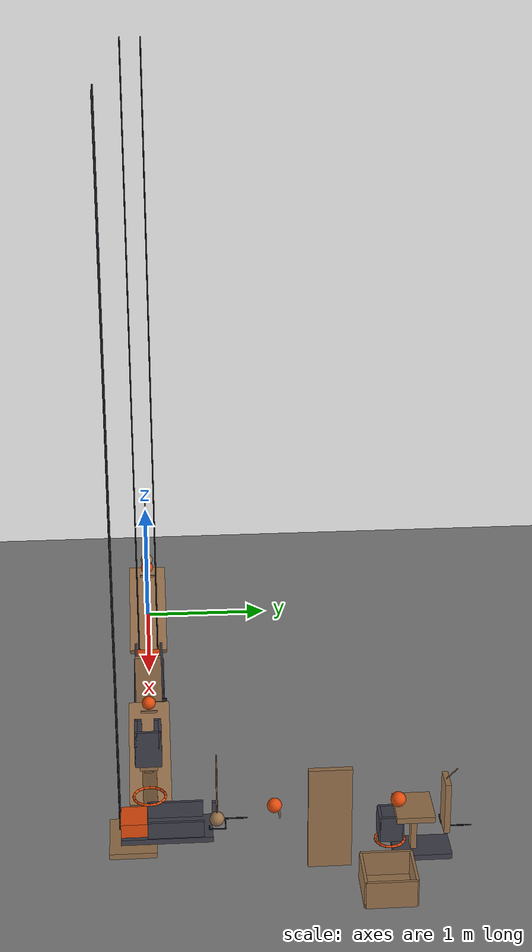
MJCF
<mujoco model="revised_four_ball_cascade">
  <compiler angle="radian"/>
  <option timestep="0.002"/>
  <worldbody>
    <geom name="floor" type="plane" size="12 12 0.1" friction="0.68 0.005 0.002"/>
    <body name="pendulum1" pos="-0.0299343 0 1.06529">
      <joint name="pendulum1_hinge" type="hinge" pos="0 0 0" axis="0 1 0" limited="true" range="-1.309 0.959931" damping="0.04"/>
      <geom name="pendulum1" type="sphere" pos="0 0 -0.55" size="0.05" mass="0.36" friction="0.68 0.005 0.0001" solref="0.01 1" rgba="0.6 0.45 0.3 1"/>
      <geom name="pendulum1 rod" type="capsule" size="0.005" fromto="0 0 0 3.46945e-18 0 -0.5" mass="0.04" friction="0.68 0.005 0.0001" solref="0.01 1" rgba="0.6 0.45 0.3 1"/>
    </body>
    <body name="ramp1">
      <geom name="ramp1" type="box" pos="0.449121 0 0.285735" size="0.475 0.15 0.02" euler="0 0.331613 0" friction="0.68 0.005 0.0001" solref="0.01 1" rgba="0.6 0.45 0.3 1"/>
    </body>
    <body name="ramp1 holding lip">
      <geom name="ramp1 holding lip" type="box" pos="0.113 0 0.4306" size="0.006 0.06 0.008" friction="0.68 0.005 0.0001" solref="0.01 1" rgba="0.6 0.45 0.3 1"/>
    </body>
    <body name="ball1" pos="0.0700657 0 0.490287">
      <freejoint/>
      <geom name="ball1" type="sphere" pos="0 0 0" size="0.05" mass="0.2" condim="6" friction="0.68 0.005 0.002" solref="0.01 1" rgba="0.9 0.3 0.05 1"/>
    </body>
    <body name="cart1 track">
      <geom name="cart1 track" type="box" pos="1.36975 0 0.1" size="0.375 0.12 0.02" friction="0.68 0.005 0.0001" solref="0.01 1" rgba="0.25 0.25 0.3 1"/>
    </body>
    <body name="cart1 left guide">
      <geom name="cart1 left guide" type="box" pos="1.36975 0.102 0.185" size="0.4 0.01 0.065" friction="0.68 0.005 0.0001" solref="0.01 1" rgba="0.25 0.25 0.3 1"/>
    </body>
    <body name="cart1 right guide">
      <geom name="cart1 right guide" type="box" pos="1.36975 -0.102 0.185" size="0.4 0.01 0.065" friction="0.68 0.005 0.0001" solref="0.01 1" rgba="0.25 0.25 0.3 1"/>
    </body>
    <body name="cart1" pos="1.13475 0 0.17">
      <freejoint/>
      <geom name="cart1" type="box" pos="0 0 0" size="0.11 0.09 0.05" mass="0.5" friction="0.68 0.005 0.0001" solref="0.01 1" rgba="0.9 0.3 0.05 1"/>
    </body>
    <body name="cart1 assist" pos="1.01975 0 5.17">
      <joint name="cart1_assist_hinge" type="hinge" pos="0 0 0" axis="0 1 0" limited="true" range="-0.139626 0" stiffness="0.1" springref="-166" damping="0.04"/>
      <geom name="cart1 assist" type="capsule" size="0.005" fromto="0 -0.075 0 0 -0.075 -5" mass="0.005" friction="0.68 0.005 0.0001" solref="0.01 1" rgba="0.2 0.2 0.25 1"/>
      <geom name="cart1 assist left arm" type="capsule" size="0.005" fromto="0 0.075 0 0 0.075 -5" mass="0.005" friction="0.68 0.005 0.0001" solref="0.01 1" rgba="0.2 0.2 0.25 1"/>
    </body>
    <body name="cart1 left stop">
      <geom name="cart1 left stop" type="box" pos="1.70475 0.095 0.18" size="0.02 0.02 0.06" friction="0.68 0.005 0.0001" solref="0.01 1" rgba="0.25 0.25 0.3 1"/>
    </body>
    <body name="cart1 right stop">
      <geom name="cart1 right stop" type="box" pos="1.70475 -0.095 0.18" size="0.02 0.02 0.06" friction="0.68 0.005 0.0001" solref="0.01 1" rgba="0.25 0.25 0.3 1"/>
    </body>
    <body name="domino1" pos="1.68475 0 0.24">
      <freejoint/>
      <geom name="domino1" type="box" pos="0 0 0" size="0.04 0.02 0.12" mass="0.25" friction="0.68 0.005 0.0001" solref="0.01 1" rgba="0.6 0.45 0.3 1"/>
    </body>
    <body name="flap1" pos="1.92475 0 0.65">
      <joint name="flap1_hinge" type="hinge" pos="0 0 0" axis="0 1 0" limited="true" range="-1.13446 0" stiffness="0.5" springref="-1.13446" damping="0.04"/>
      <geom name="flap1" type="box" pos="0 0 -0.2" size="0.2 0.1 0.02" euler="0 -1.5708 0" mass="0.3" friction="0.68 0.005 0.0001" solref="0.01 1" rgba="0.6 0.45 0.3 1"/>
    </body>
    <body name="flap1 catch" pos="2.09975 -0.015 0.27">
      <joint name="flap1_catch_hinge" type="hinge" pos="0 0 0" axis="0 0 1" limited="true" range="-1.74533 0" damping="0.04"/>
      <geom name="flap1 catch" type="capsule" size="0.005" fromto="-0.15 0 0 0 0 0" mass="0.004" friction="0.68 0.005 0.0001" solref="0.01 1" rgba="0.2 0.2 0.25 1"/>
      <geom name="flap1 catch crosspiece" type="capsule" size="0.004" fromto="-0.15 0 0 -0.15 0.145 0" mass="0.002" friction="0.68 0.005 0.0001" solref="0.01 1" rgba="0.2 0.2 0.25 1"/>
      <geom name="flap1 catch return" type="capsule" size="0.004" fromto="-0.15 0.145 0 -0.2 0.145 0" mass="0.002" friction="0.68 0.005 0.0001" solref="0.01 1" rgba="0.2 0.2 0.25 1"/>
      <geom name="flap1 release ear" type="capsule" size="0.004" fromto="-0.2 0.145 0 -0.2 0.03 0" mass="0.002" friction="0.68 0.005 0.0001" solref="0.01 1" rgba="0.2 0.2 0.25 1"/>
    </body>
    <body name="ramp2">
      <geom name="ramp2" type="box" pos="2.71512 0 0.285735" size="0.475 0.15 0.02" euler="0 0.331613 0" friction="0.68 0.005 0.0001" solref="0.01 1" rgba="0.6 0.45 0.3 1"/>
    </body>
    <body name="ramp2 holding lip">
      <geom name="ramp2 holding lip" type="box" pos="2.369 0 0.434043" size="0.006 0.06 0.008" friction="0.68 0.005 0.0001" solref="0.01 1" rgba="0.6 0.45 0.3 1"/>
    </body>
    <body name="ball2" pos="2.33607 0 0.490287">
      <freejoint/>
      <geom name="ball2" type="sphere" pos="0 0 0" size="0.05" mass="0.2" condim="6" friction="0.68 0.005 0.002" solref="0.01 1" rgba="0.9 0.3 0.05 1"/>
    </body>
    <body name="seesaw1" pos="3.37419 0 0.513926">
      <joint name="seesaw1_hinge" type="hinge" pos="0 0 0" axis="0 1 0" limited="true" range="-0.698132 0" stiffness="0.1" springref="-13" damping="0.04"/>
      <geom name="seesaw1" type="box" pos="-5e-08 0 0" size="0.325 0.05 0.02" euler="0 -1.309 0" mass="0.55" friction="0.68 0.005 0.0001" solref="0.01 1" rgba="0.6 0.45 0.3 1"/>
      <geom name="seesaw1 cradle bridge" type="box" pos="0.234116 0 0.321074" size="0.15 0.02 0.005" mass="0.003" friction="0.68 0.005 0.0001" solref="0.01 1" rgba="0.6 0.45 0.3 1"/>
      <geom name="seesaw1 cradle" type="box" pos="0.384116 0 0.321074" size="0.07 0.03 0.005" mass="0.003" friction="0.68 0.005 0.0001" solref="0.01 1" rgba="0.6 0.45 0.3 1"/>
    </body>
    <body name="block1" pos="3.7583 0 0.9">
      <freejoint/>
      <geom name="block1" type="box" pos="0 0 0" size="0.06 0.06 0.06" mass="0.35" friction="0.68 0.005 0.0001" solref="0.01 1" rgba="0.6 0.45 0.3 1"/>
    </body>
    <body name="block1 near left guide">
      <geom name="block1 near left guide" type="box" pos="3.6783 0.06 1.0175" size="0.01 0.02 0.1325" friction="0.68 0.005 0.0001" solref="0.01 1" rgba="0.25 0.25 0.3 1"/>
    </body>
    <body name="block1 near right guide">
      <geom name="block1 near right guide" type="box" pos="3.6783 -0.06 1.0175" size="0.01 0.02 0.1325" friction="0.68 0.005 0.0001" solref="0.01 1" rgba="0.25 0.25 0.3 1"/>
    </body>
    <body name="block1 far guide">
      <geom name="block1 far guide" type="box" pos="3.8383 0 1.0175" size="0.01 0.09 0.1325" friction="0.68 0.005 0.0001" solref="0.01 1" rgba="0.25 0.25 0.3 1"/>
    </body>
    <body name="block1 left guide">
      <geom name="block1 left guide" type="box" pos="3.7583 0.08 1.0175" size="0.09 0.01 0.1325" friction="0.68 0.005 0.0001" solref="0.01 1" rgba="0.25 0.25 0.3 1"/>
    </body>
    <body name="block1 right guide">
      <geom name="block1 right guide" type="box" pos="3.7583 -0.08 1.0175" size="0.09 0.01 0.1325" friction="0.68 0.005 0.0001" solref="0.01 1" rgba="0.25 0.25 0.3 1"/>
    </body>
    <body name="ring1">
      <geom name="ring1_00" type="capsule" size="0.008" fromto="3.8663 0 0.6 3.85808 0.0413298 0.6" friction="0.68 0.005 0.0001" solref="0.01 1" rgba="0.9 0.3 0.05 1"/>
      <geom name="ring1_01" type="capsule" size="0.008" fromto="3.85808 0.0413298 0.6 3.83467 0.0763675 0.6" friction="0.68 0.005 0.0001" solref="0.01 1" rgba="0.9 0.3 0.05 1"/>
      <geom name="ring1_02" type="capsule" size="0.008" fromto="3.83467 0.0763675 0.6 3.79963 0.099779 0.6" friction="0.68 0.005 0.0001" solref="0.01 1" rgba="0.9 0.3 0.05 1"/>
      <geom name="ring1_03" type="capsule" size="0.008" fromto="3.79963 0.099779 0.6 3.7583 0.108 0.6" friction="0.68 0.005 0.0001" solref="0.01 1" rgba="0.9 0.3 0.05 1"/>
      <geom name="ring1_04" type="capsule" size="0.008" fromto="3.7583 0.108 0.6 3.71697 0.099779 0.6" friction="0.68 0.005 0.0001" solref="0.01 1" rgba="0.9 0.3 0.05 1"/>
      <geom name="ring1_05" type="capsule" size="0.008" fromto="3.71697 0.099779 0.6 3.68194 0.0763675 0.6" friction="0.68 0.005 0.0001" solref="0.01 1" rgba="0.9 0.3 0.05 1"/>
      <geom name="ring1_06" type="capsule" size="0.008" fromto="3.68194 0.0763675 0.6 3.65853 0.0413298 0.6" friction="0.68 0.005 0.0001" solref="0.01 1" rgba="0.9 0.3 0.05 1"/>
      <geom name="ring1_07" type="capsule" size="0.008" fromto="3.65853 0.0413298 0.6 3.6503 1.32262e-17 0.6" friction="0.68 0.005 0.0001" solref="0.01 1" rgba="0.9 0.3 0.05 1"/>
      <geom name="ring1_08" type="capsule" size="0.008" fromto="3.6503 1.32262e-17 0.6 3.65853 -0.0413298 0.6" friction="0.68 0.005 0.0001" solref="0.01 1" rgba="0.9 0.3 0.05 1"/>
      <geom name="ring1_09" type="capsule" size="0.008" fromto="3.65853 -0.0413298 0.6 3.68194 -0.0763675 0.6" friction="0.68 0.005 0.0001" solref="0.01 1" rgba="0.9 0.3 0.05 1"/>
      <geom name="ring1_10" type="capsule" size="0.008" fromto="3.68194 -0.0763675 0.6 3.71697 -0.099779 0.6" friction="0.68 0.005 0.0001" solref="0.01 1" rgba="0.9 0.3 0.05 1"/>
      <geom name="ring1_11" type="capsule" size="0.008" fromto="3.71697 -0.099779 0.6 3.7583 -0.108 0.6" friction="0.68 0.005 0.0001" solref="0.01 1" rgba="0.9 0.3 0.05 1"/>
      <geom name="ring1_12" type="capsule" size="0.008" fromto="3.7583 -0.108 0.6 3.79963 -0.099779 0.6" friction="0.68 0.005 0.0001" solref="0.01 1" rgba="0.9 0.3 0.05 1"/>
      <geom name="ring1_13" type="capsule" size="0.008" fromto="3.79963 -0.099779 0.6 3.83467 -0.0763675 0.6" friction="0.68 0.005 0.0001" solref="0.01 1" rgba="0.9 0.3 0.05 1"/>
      <geom name="ring1_14" type="capsule" size="0.008" fromto="3.83467 -0.0763675 0.6 3.85808 -0.0413298 0.6" friction="0.68 0.005 0.0001" solref="0.01 1" rgba="0.9 0.3 0.05 1"/>
      <geom name="ring1_15" type="capsule" size="0.008" fromto="3.85808 -0.0413298 0.6 3.8663 -2.64524e-17 0.6" friction="0.68 0.005 0.0001" solref="0.01 1" rgba="0.9 0.3 0.05 1"/>
    </body>
    <body name="door1" pos="3.7583 -0.12 0.27">
      <joint name="door1_hinge" type="hinge" pos="0 0 0" axis="1 0 0" limited="true" range="-1.22173 0" damping="0.04"/>
      <geom name="door1" type="box" pos="0 0 0" size="0.21 0.16 0.02" mass="0.45" friction="0.68 0.005 0.0001" solref="0.01 1" rgba="0.6 0.45 0.3 1"/>
    </body>
    <body name="cart2 track">
      <geom name="cart2 track" type="box" pos="3.7583 0.11 0.33" size="0.14 0.31 0.02" friction="0.68 0.005 0.0001" solref="0.01 1" rgba="0.25 0.25 0.3 1"/>
    </body>
    <body name="cart2 near guide">
      <geom name="cart2 near guide" type="box" pos="3.6363 0.17 0.41" size="0.01 0.19 0.06" friction="0.68 0.005 0.0001" solref="0.01 1" rgba="0.25 0.25 0.3 1"/>
    </body>
    <body name="cart2 far guide">
      <geom name="cart2 far guide" type="box" pos="3.8803 0.17 0.41" size="0.01 0.19 0.06" friction="0.68 0.005 0.0001" solref="0.01 1" rgba="0.25 0.25 0.3 1"/>
    </body>
    <body name="cart2" pos="3.7583 -0.11 0.4">
      <freejoint/>
      <geom name="cart2" type="box" pos="0 0 0" size="0.11 0.09 0.05" mass="0.5" friction="0.68 0.005 0.0001" solref="0.01 1" rgba="0.9 0.3 0.05 1"/>
    </body>
    <body name="cart2 assist" pos="3.7583 -0.205 5.4">
      <joint name="cart2_assist_hinge" type="hinge" pos="0 0 0" axis="1 0 0" limited="true" range="0 0.139626" stiffness="0.1" springref="166" damping="0.04"/>
      <geom name="cart2 assist" type="capsule" size="0.005" fromto="-0.075 0 0 -0.075 0 -5" mass="0.005" friction="0.68 0.005 0.0001" solref="0.01 1" rgba="0.2 0.2 0.25 1"/>
      <geom name="cart2 assist far arm" type="capsule" size="0.005" fromto="0.075 0 0 0.075 0 -5" mass="0.005" friction="0.68 0.005 0.0001" solref="0.01 1" rgba="0.2 0.2 0.25 1"/>
    </body>
    <body name="cart2 stop">
      <geom name="cart2 stop" type="box" pos="3.6533 0.44 0.41" size="0.015 0.02 0.06" friction="0.68 0.005 0.0001" solref="0.01 1" rgba="0.25 0.25 0.3 1"/>
    </body>
    <body name="pendulum2" pos="3.7583 0.45 0.9">
      <joint name="pendulum2_hinge" type="hinge" pos="0 0 0" axis="1 0 0" limited="true" range="0 0.663225" stiffness="3" springref="0.663225" damping="0.04"/>
      <geom name="pendulum2" type="sphere" pos="0 0 -0.5" size="0.05" mass="0.32" friction="0.68 0.005 0.0001" solref="0.01 1" rgba="0.6 0.45 0.3 1"/>
      <geom name="pendulum2 rod" type="capsule" size="0.005" fromto="0 0 0 0 0 -0.45" mass="0.03" friction="0.68 0.005 0.0001" solref="0.01 1" rgba="0.6 0.45 0.3 1"/>
    </body>
    <body name="pendulum2 catch" pos="3.7583 0.655 0.4">
      <joint name="pendulum2_catch_hinge" type="hinge" pos="0 0 0" axis="0 0 1" limited="true" range="0 1.74533" damping="0.04"/>
      <geom name="pendulum2 catch" type="capsule" size="0.005" fromto="0 -0.15 0 0 0 0" mass="0.004" friction="0.68 0.005 0.0001" solref="0.01 1" rgba="0.2 0.2 0.25 1"/>
      <geom name="pendulum2 catch crosspiece" type="capsule" size="0.004" fromto="0 -0.15 0 0.12 -0.15 0" mass="0.002" friction="0.68 0.005 0.0001" solref="0.01 1" rgba="0.2 0.2 0.25 1"/>
      <geom name="pendulum2 catch return" type="capsule" size="0.004" fromto="0.12 -0.15 0 0.12 -0.26 0" mass="0.002" friction="0.68 0.005 0.0001" solref="0.01 1" rgba="0.2 0.2 0.25 1"/>
      <geom name="pendulum2 release ear" type="capsule" size="0.004" fromto="0.12 -0.26 0 0.08 -0.26 0" mass="0.002" friction="0.68 0.005 0.0001" solref="0.01 1" rgba="0.2 0.2 0.25 1"/>
    </body>
    <body name="ramp3">
      <geom name="ramp3" type="box" pos="3.7583 1.22065 0.285735" size="0.475 0.15 0.02" euler="0 1.5708 0" friction="0.68 0.005 0.0001" solref="0.01 1" rgba="0.6 0.45 0.3 1"/>
    </body>
    <body name="ramp3 holding lip">
      <geom name="ramp3 holding lip" type="box" pos="3.7583 0.874526 0.434043" size="0.06 0.006 0.008" friction="0.68 0.005 0.0001" solref="0.01 1" rgba="0.6 0.45 0.3 1"/>
    </body>
    <body name="ball3" pos="3.7583 0.841592 0.490287">
      <freejoint/>
      <geom name="ball3" type="sphere" pos="0 0 0" size="0.05" mass="0.2" condim="6" friction="0.68 0.005 0.002" solref="0.01 1" rgba="0.9 0.3 0.05 1"/>
    </body>
    <body name="domino2 platform">
      <geom name="domino2 platform" type="box" pos="3.7583 1.855 0.1" size="0.12 0.2 0.02" friction="0.68 0.005 0.0001" solref="0.01 1" rgba="0.25 0.25 0.3 1"/>
    </body>
    <body name="domino2" pos="3.7583 1.79628 0.24">
      <freejoint/>
      <geom name="domino2" type="box" pos="0 0 0" size="0.04 0.02 0.12" mass="0.25" friction="0.68 0.005 0.0001" solref="0.01 1" rgba="0.6 0.45 0.3 1"/>
    </body>
    <body name="flap2" pos="3.7583 2.01628 0.65">
      <joint name="flap2_hinge" type="hinge" pos="0 0 0" axis="1 0 0" limited="true" range="0 1.0472" stiffness="0.5" springref="1.0472" damping="0.04"/>
      <geom name="flap2" type="box" pos="0 0 -0.19" size="0.09 0.02 0.19" mass="0.28" friction="0.68 0.005 0.0001" solref="0.01 1" rgba="0.6 0.45 0.3 1"/>
      <geom name="flap2 striker" type="capsule" size="0.004" fromto="0 0 0 0.5 -0.0191154 0.393109" mass="0.005" friction="0.68 0.005 0.0001" solref="0.01 1" rgba="0.6 0.45 0.3 1"/>
    </body>
    <body name="flap2 catch" pos="3.7733 2.19128 0.28">
      <joint name="flap2_catch_hinge" type="hinge" pos="0 0 0" axis="0 0 1" limited="true" range="-1.74533 0" damping="0.04"/>
      <geom name="flap2 catch" type="capsule" size="0.005" fromto="0 -0.15 0 0 0 0" mass="0.004" friction="0.68 0.005 0.0001" solref="0.01 1" rgba="0.2 0.2 0.25 1"/>
      <geom name="flap2 catch crosspiece" type="capsule" size="0.004" fromto="0 -0.15 0 -0.135 -0.15 0" mass="0.002" friction="0.68 0.005 0.0001" solref="0.01 1" rgba="0.2 0.2 0.25 1"/>
      <geom name="flap2 catch return" type="capsule" size="0.004" fromto="-0.135 -0.15 0 -0.135 -0.2 0" mass="0.002" friction="0.68 0.005 0.0001" solref="0.01 1" rgba="0.2 0.2 0.25 1"/>
      <geom name="flap2 release ear" type="capsule" size="0.004" fromto="-0.135 -0.2 0 -0.03 -0.2 0" mass="0.002" friction="0.68 0.005 0.0001" solref="0.01 1" rgba="0.2 0.2 0.25 1"/>
    </body>
    <body name="shelf1">
      <geom name="shelf1" type="box" pos="4.2583 1.71628 0.76" size="0.15 0.125 0.02" friction="0.68 0.005 0.0001" solref="0.01 1" rgba="0.6 0.45 0.3 1"/>
    </body>
    <body name="ball4" pos="4.2583 1.61628 0.83">
      <freejoint/>
      <geom name="ball4" type="sphere" pos="0 0 0" size="0.05" mass="0.2" condim="6" friction="0.68 0.005 0.002" solref="0.01 1" rgba="0.9 0.3 0.05 1"/>
    </body>
    <body name="ball4 near drop guide">
      <geom name="ball4 near drop guide" type="box" pos="4.1863 1.56628 0.65" size="0.01 0.072 0.09" friction="0.68 0.005 0.0001" solref="0.01 1" rgba="0.25 0.25 0.3 1"/>
    </body>
    <body name="ball4 far drop guide">
      <geom name="ball4 far drop guide" type="box" pos="4.3303 1.56628 0.65" size="0.01 0.072 0.09" friction="0.68 0.005 0.0001" solref="0.01 1" rgba="0.25 0.25 0.3 1"/>
    </body>
    <body name="ball4 left drop guide">
      <geom name="ball4 left drop guide" type="box" pos="4.2583 1.63828 0.65" size="0.072 0.01 0.09" friction="0.68 0.005 0.0001" solref="0.01 1" rgba="0.25 0.25 0.3 1"/>
    </body>
    <body name="ball4 right drop guide">
      <geom name="ball4 right drop guide" type="box" pos="4.2583 1.49428 0.65" size="0.072 0.01 0.09" friction="0.68 0.005 0.0001" solref="0.01 1" rgba="0.25 0.25 0.3 1"/>
    </body>
    <body name="ring2">
      <geom name="ring2_00" type="capsule" size="0.008" fromto="4.3543 1.56628 0.53 4.347 1.60302 0.53" friction="0.68 0.005 0.0001" solref="0.01 1" rgba="0.9 0.3 0.05 1"/>
      <geom name="ring2_01" type="capsule" size="0.008" fromto="4.347 1.60302 0.53 4.32619 1.63416 0.53" friction="0.68 0.005 0.0001" solref="0.01 1" rgba="0.9 0.3 0.05 1"/>
      <geom name="ring2_02" type="capsule" size="0.008" fromto="4.32619 1.63416 0.53 4.29504 1.65497 0.53" friction="0.68 0.005 0.0001" solref="0.01 1" rgba="0.9 0.3 0.05 1"/>
      <geom name="ring2_03" type="capsule" size="0.008" fromto="4.29504 1.65497 0.53 4.2583 1.66228 0.53" friction="0.68 0.005 0.0001" solref="0.01 1" rgba="0.9 0.3 0.05 1"/>
      <geom name="ring2_04" type="capsule" size="0.008" fromto="4.2583 1.66228 0.53 4.22157 1.65497 0.53" friction="0.68 0.005 0.0001" solref="0.01 1" rgba="0.9 0.3 0.05 1"/>
      <geom name="ring2_05" type="capsule" size="0.008" fromto="4.22157 1.65497 0.53 4.19042 1.63416 0.53" friction="0.68 0.005 0.0001" solref="0.01 1" rgba="0.9 0.3 0.05 1"/>
      <geom name="ring2_06" type="capsule" size="0.008" fromto="4.19042 1.63416 0.53 4.16961 1.60302 0.53" friction="0.68 0.005 0.0001" solref="0.01 1" rgba="0.9 0.3 0.05 1"/>
      <geom name="ring2_07" type="capsule" size="0.008" fromto="4.16961 1.60302 0.53 4.1623 1.56628 0.53" friction="0.68 0.005 0.0001" solref="0.01 1" rgba="0.9 0.3 0.05 1"/>
      <geom name="ring2_08" type="capsule" size="0.008" fromto="4.1623 1.56628 0.53 4.16961 1.52954 0.53" friction="0.68 0.005 0.0001" solref="0.01 1" rgba="0.9 0.3 0.05 1"/>
      <geom name="ring2_09" type="capsule" size="0.008" fromto="4.16961 1.52954 0.53 4.19042 1.4984 0.53" friction="0.68 0.005 0.0001" solref="0.01 1" rgba="0.9 0.3 0.05 1"/>
      <geom name="ring2_10" type="capsule" size="0.008" fromto="4.19042 1.4984 0.53 4.22157 1.47759 0.53" friction="0.68 0.005 0.0001" solref="0.01 1" rgba="0.9 0.3 0.05 1"/>
      <geom name="ring2_11" type="capsule" size="0.008" fromto="4.22157 1.47759 0.53 4.2583 1.47028 0.53" friction="0.68 0.005 0.0001" solref="0.01 1" rgba="0.9 0.3 0.05 1"/>
      <geom name="ring2_12" type="capsule" size="0.008" fromto="4.2583 1.47028 0.53 4.29504 1.47759 0.53" friction="0.68 0.005 0.0001" solref="0.01 1" rgba="0.9 0.3 0.05 1"/>
      <geom name="ring2_13" type="capsule" size="0.008" fromto="4.29504 1.47759 0.53 4.32619 1.4984 0.53" friction="0.68 0.005 0.0001" solref="0.01 1" rgba="0.9 0.3 0.05 1"/>
      <geom name="ring2_14" type="capsule" size="0.008" fromto="4.32619 1.4984 0.53 4.347 1.52954 0.53" friction="0.68 0.005 0.0001" solref="0.01 1" rgba="0.9 0.3 0.05 1"/>
      <geom name="ring2_15" type="capsule" size="0.008" fromto="4.347 1.52954 0.53 4.3543 1.56628 0.53" friction="0.68 0.005 0.0001" solref="0.01 1" rgba="0.9 0.3 0.05 1"/>
    </body>
    <body name="box1">
      <geom name="box1_base" type="box" pos="4.2583 1.56628 0.12" size="0.17 0.17 0.01" friction="0.68 0.005 0.002" solref="0.01 1" rgba="0.6 0.45 0.3 1"/>
      <geom name="box1_near_wall" type="box" pos="4.0883 1.56628 0.21" size="0.01 0.17 0.1" friction="0.68 0.005 0.002" solref="0.01 1" rgba="0.6 0.45 0.3 1"/>
      <geom name="box1_far_wall" type="box" pos="4.4283 1.56628 0.21" size="0.01 0.17 0.1" friction="0.68 0.005 0.002" solref="0.01 1" rgba="0.6 0.45 0.3 1"/>
      <geom name="box1_left_wall" type="box" pos="4.2583 1.73628 0.21" size="0.17 0.01 0.1" friction="0.68 0.005 0.002" solref="0.01 1" rgba="0.6 0.45 0.3 1"/>
      <geom name="box1_right_wall" type="box" pos="4.2583 1.39628 0.21" size="0.17 0.01 0.1" friction="0.68 0.005 0.002" solref="0.01 1" rgba="0.6 0.45 0.3 1"/>
    </body>
  </worldbody>
  <keyframe>
    <key name="start" qpos="0.959931 0.0700657 0 0.490287 1 0 0 0 1.13475 0 0.17 1 0 0 0 0 1.68475 0 0.24 1 0 0 0 0 0 2.33607 0 0.490287 1 0 0 0 0 3.7583 0 0.9 1 0 0 0 0 3.7583 -0.11 0.4 1 0 0 0 0 0 0 3.7583 0.841592 0.490287 1 0 0 0 3.7583 1.79628 0.24 1 0 0 0 0 0 4.2583 1.61628 0.83 1 0 0 0" qvel="0 0 0 0 0 0 0 0 0 0 0 0 0 0 0 0 0 0 0 0 0 0 0 0 0 0 0 0 0 0 0 0 0 0 0 0 0 0 0 0 0 0 0 0 0 0 0 0 0 0 0 0 0 0 0 0 0 0 0 0 0 0 0 0 0"/>
  </keyframe>
</mujoco>
